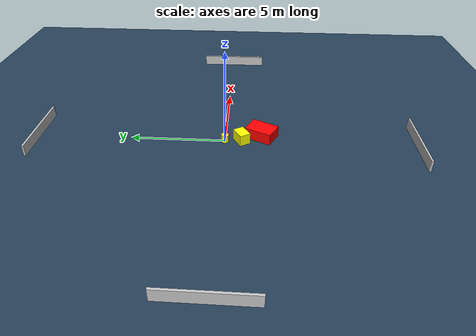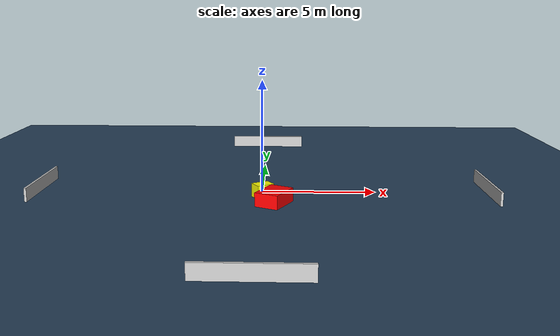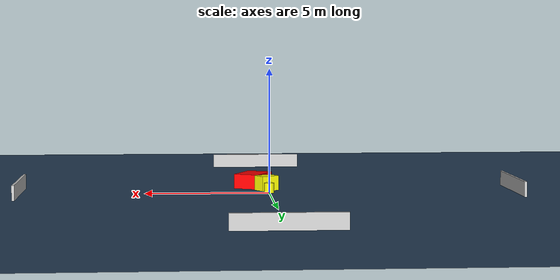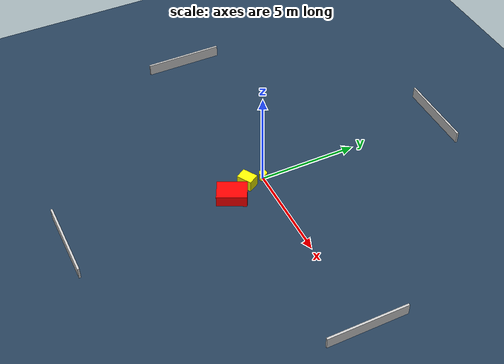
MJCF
<?xml version="1.0" ?>
<mujoco model="generated_environment">
  <option timestep="0.01" integrator="RK4" cone="elliptic"/>
  <default>
    <geom density="1"/>
  </default>
  <asset>
    <texture builtin="gradient" height="3072" name="skybox" rgb1="0.3 0.5 0.7" rgb2="0 0 0" type="skybox" width="512"/>
    <texture builtin="checker" height="300" name="groundplane" rgb1="0.2 0.3 0.4" rgb2="0.1 0.2 0.3" type="2d" width="300"/>
    <material name="groundplane" reflectance="0.2" texrepeat="5 5" texture="groundplane"/>
  </asset>
  <worldbody>
    <light dir="0 0 -1" directional="true" pos="0 0 1.5"/>
    <geom condim="3" friction="0.5 0.005 0.001" material="groundplane" name="floor" pos="0 0 0" size="0 0 0.05" type="plane"/>
    <body name="walls">
      <geom name="wall_1" condim="4" pos="-10.0 0.0 0.3" rgba="0.800000011920929 0.800000011920929 0.800000011920929 1.0" size="0.05 2.0 0.3" type="box"/>
      <geom name="wall_2" condim="4" pos="10.0 0.0 0.3" rgba="0.800000011920929 0.800000011920929 0.800000011920929 1.0" size="0.05 2.0 0.3" type="box"/>
      <geom name="wall_3" condim="4" pos="0.0 -10.0 0.3" rgba="0.800000011920929 0.800000011920929 0.800000011920929 1.0" size="2.0 0.05 0.3" type="box"/>
      <geom name="wall_4" condim="4" pos="0.0 10.0 0.3" rgba="0.800000011920929 0.800000011920929 0.800000011920929 1.0" size="2.0 0.05 0.3" type="box"/>
    </body>
    <body name="robot">
      <joint name="joint_x" type="slide" pos="0 0 0" axis="1 0 0"/>
      <joint name="joint_y" type="slide" pos="0 0 0" axis="0 1 0"/>
      <geom name="robot" type="cylinder" pos="0.0 0.0 0.2" size="0.2 0.2 0.0" mass="5.0" friction="1.0 0.005 0.0001" condim="4" rgba="1.0 1.0 0.0 1.0"/>
    </body>
    <body name="obstacle_1_movable">
      <geom name="obstacle_1_movable" condim="4" pos="0.048853638701729984 -0.8725613186771551 0.3" euler="0 0 120.5716161158939" friction="0.0 0.005 0.001" rgba="1.0 1.0 0.0 1.0" size="0.29662563193912955 0.39542350411572935 0.3" type="box" mass="0.1"/>
      <joint type="free"/>
    </body>
    <body name="obstacle_2_static">
      <geom name="obstacle_2_static" condim="4" pos="0.550488101530329 -1.9171335789078152 0.3" euler="0 0 333.13601347676445" friction="0.0 0.005 0.001" rgba="1.0 0.0 0.0 1.0" size="0.5287648211700957 0.7397897775417654 0.3" type="box"/>
    </body>
  </worldbody>
  <actuator>
    <motor name="actuator_x" joint="joint_x" gear="1" ctrlrange="-1 1"/>
    <motor name="actuator_y" joint="joint_y" gear="1" ctrlrange="-1 1"/>
  </actuator>
</mujoco>
